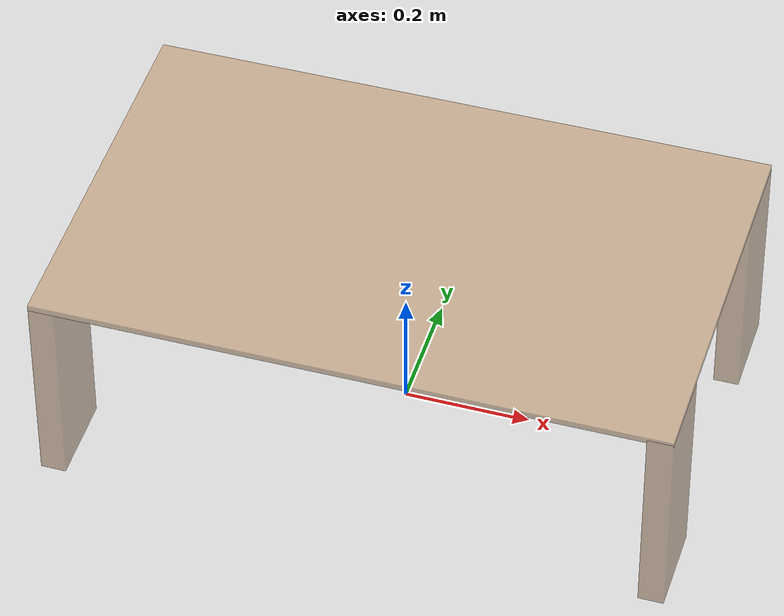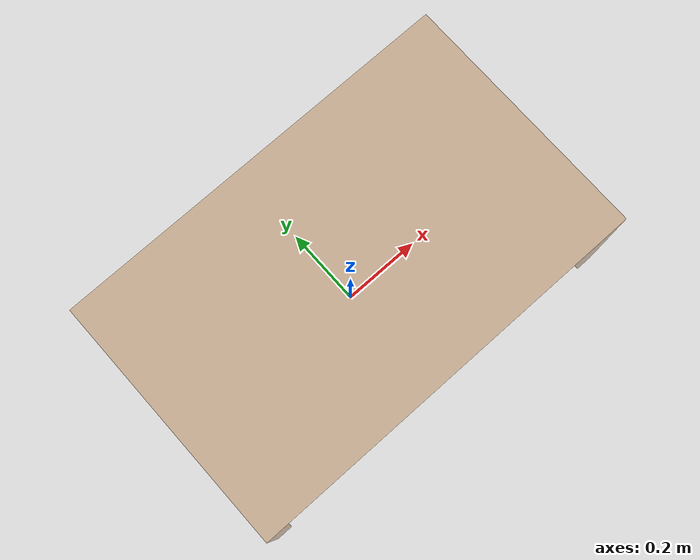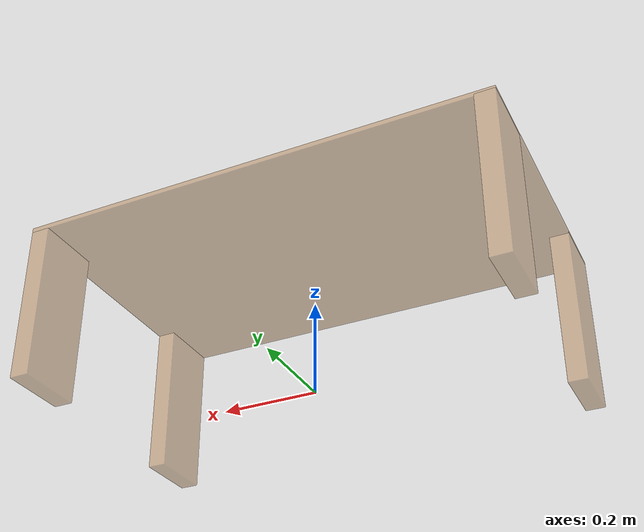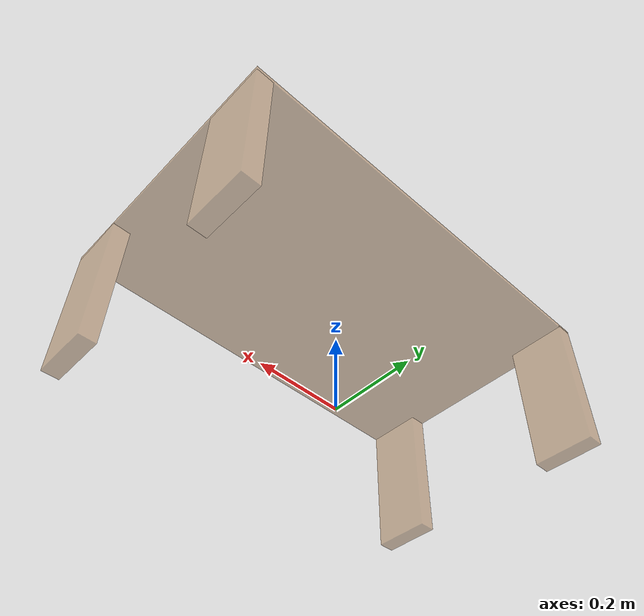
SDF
<?xml version="1.0" ?>
<sdf version="1.5">
  <model name="clue_table_ghost">
    <static>true</static>
    <link name="link">

      <collision name='base_collision'>
        <pose>0 0 0.34 0 0 0</pose>
        <geometry>
          <box>
             <size>0.99 0.62 0.01</size>
          </box>
        </geometry>
      </collision>

      <visual name="table_top">
        <transparency>0.5</transparency>
        <pose>0 0 0.34 0 0 0</pose>
        <geometry>
          <box>
            <size>0.99 0.62 0.01</size>
          </box>
        </geometry>
        <material>
          <script>
            <uri>model://clue_table_ghost/materials/scripts</uri>
            <uri>model://clue_table_ghost/materials/textures</uri>
            <name>Wood</name>
          </script>
        </material>
      </visual>

      <visual name="front_left_leg">
        <transparency>0.5</transparency>
        <pose>-0.475 0.24 0.17 0 0 0</pose>
        <geometry>
          <box>
            <size>0.04 0.14 0.34</size>
          </box>
        </geometry>
        <material>
          <script>
            <uri>model://clue_table_ghost/materials/scripts</uri>
            <uri>model://clue_table_ghost/materials/textures</uri>
            <name>Wood</name>
          </script>
        </material>
      </visual>

      <visual name="front_right_leg">
        <transparency>0.5</transparency>
        <pose>-0.475 -0.24 0.17 0 0 0</pose>
        <geometry>
          <box>
            <size>0.04 0.14 0.34</size>
          </box>
        </geometry>
        <material>
          <script>
            <uri>model://clue_table_ghost/materials/scripts</uri>
            <uri>model://clue_table_ghost/materials/textures</uri>
            <name>Wood</name>
          </script>
        </material>
      </visual>

      <visual name="back_right_leg">
        <transparency>0.5</transparency>
        <pose>0.475 0.24 0.17 0 0 0</pose>
        <geometry>
          <box>
            <size>0.04 0.14 0.34</size>
          </box>
        </geometry>
        <material>
          <script>
            <uri>model://clue_table_ghost/materials/scripts</uri>
            <uri>model://clue_table_ghost/materials/textures</uri>
            <name>Wood</name>
          </script>
        </material>
      </visual>

      <visual name="back_left_leg">
        <transparency>0.5</transparency>
        <pose>0.475 -0.24 0.17 0 0 0</pose>
        <geometry>
          <box>
            <size>0.04 0.14 0.34</size>
          </box>
        </geometry>
        <material>
          <script>
            <uri>model://clue_table_ghost/materials/scripts</uri>
            <uri>model://clue_table_ghost/materials/textures</uri>
            <name>Wood</name>
          </script>
        </material>
      </visual>
    </link>
  </model>
</sdf>
